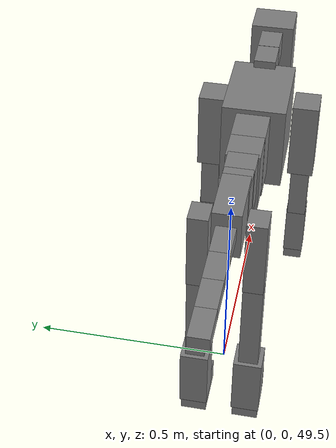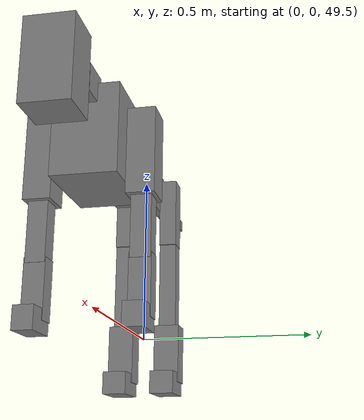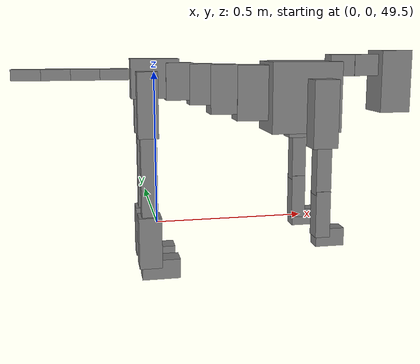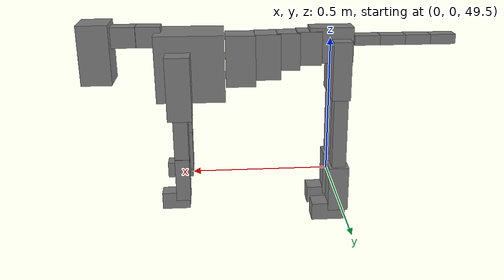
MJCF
<mujoco model="dog">

    <default>
        <joint armature="0.02" stiffness="1" damping="0.2" limited="true"/>
        <geom condim="3" friction="1 0.05 0.05" margin="0.01"/>
        <motor ctrllimited="true" ctrlrange="-1.0 1.0" forcelimited="true" gear="50"/>
    </default>

    <compiler inertiafromgeom="true" angle="radian"/>

    <option timestep="0.016" iterations="50" tolerance="1e-10" solver="Newton" jacobian="dense" cone="pyramidal"/>

    <size nconmax="20000" njmax="60000" nstack="5000000"/>
    <visual>
        <map force="0.1" zfar="30"/>
        <rgba haze="0.15 0.25 0.35 1"/>
        <quality shadowsize="2048"/>
        <global offwidth="800" offheight="800"/>
    </visual>

    <asset>
        <texture type="skybox" builtin="gradient" rgb1="0.3 0.5 0.7" rgb2="0 0 0" width="512" height="512"/>
        <texture name="texplane" type="2d" builtin="checker" rgb1=".2 .3 .4" rgb2=".1 0.15 0.2" width="512" height="512"
                 mark="cross" markrgb=".8 .8 .8"/>
        <texture name="texgeom" type="cube" builtin="flat" mark="cross" width="127" height="1278" rgb1="0.8 0.6 0.4"
                 rgb2="0.8 0.6 0.4" markrgb="1 1 1" random="0.01"/>

        <material name="matplane" reflectance="0.3" texture="texplane" texrepeat="1 1" texuniform="true"/>
        <material name="matgeom" texture="texgeom" texuniform="true" rgba="0.8 0.6 .4 1"/>
    </asset>

    <worldbody>
        <geom name="floor" pos="0 0 0" size="0 0 .25" type="plane" material="matplane" condim="3"/>

        <light directional="false" diffuse=".2 .2 .2" specular="0 0 0" pos="0 0 5" dir="0 0 -1" castshadow="false"/>
        <light mode="targetbodycom" target="torso" directional="false" diffuse=".8 .8 .8" specular="0.3 0.3 0.3"
               pos="0 0 4.0" dir="0 0 -1"/>

        <body name="root" pos="0 0 50">
            <freejoint name="root_1"/>
            <geom type="box" pos="0 0 -0.02" size="0.0774  0.0358  0.063" density="2030"/>

            <body name="spine1" pos="0.054 0 0">
                <joint name="spine1_y" axis="0 1 0" range="0 0.7" limited="true"/>
                <geom type="box" pos="0.02375 0 -0.03" size="0.04375  0.0375  0.05985" density="2030"/>

                <body name="spine2" pos="0.0612 0 0">
                    <joint name="spine2_y" axis="0 1 0" range="-0.15 0.15" limited="true"/>
                    <geom type="box" pos="0.03555  0  -0.04" size="0.04055  0.039  0.06615" density="2030"/>

                    <body name="spine3" pos="0.0730 0 0">
                        <joint name="spine3_y" axis="0 1 0" range="-0.15 0.15" limited="true"/>
                        <geom type="box" pos="0.03555  0  -0.057" size="0.04555  0.0445  0.081" density="2030"/>

                        <body name="spine4" pos="0.0780 0 0">
                            <joint name="spine4_y" axis="0 1 0" range="-0.15 0.15" limited="true"/>
                            <geom type="box" pos="0.05265  0  -0.07" size="0.05265  0.045  0.09135" density="2030"/>

                            <body name="torso" pos="0.1082 0 0">
                                <joint name="torso_y" axis="0 1 0" range="-0.15 0.15" limited="true"/>
                                <geom type="box" pos="0.11925  0  -0.085" size="0.11925  0.085  0.11745"
                                      density="2030"/>

                                <body name="neck1" pos="0.2160  0   0.0180">
                                    <joint name="neck1_y" axis="0 1 0" range="-1.2  -1" limited="true"/>
                                    <geom type="box" pos="0.0423  0  0" size="0.0423  0.03  0.036" density="2325"/>

                                    <body name="neck2" pos="0.0853  0  0">
                                        <joint name="neck2_y" axis="0 1 0" range="0.1  0" limited="true"/>
                                        <geom type="box" pos="0.0423  0  0" size="0.0423  0.03  0.036" density="2325"/>

                                        <body name="head" pos="0.0853  0  0">
                                            <joint name="head_y" axis="0 1 0" range="-0.3  -0.2" limited="true"/>
                                            <geom type="box" pos="0.0531  0  -0.055" size="0.0531  0.06  0.1044"
                                                  density="4030"/>

                                        </body>
                                    </body>
                                </body>

                                <body name="front_shoulder" pos="0.156  0   -0.0480">
                                    <joint name="front_shoulder_y" axis="0 1 0" range="-1 1.5" limited="true"/>
                                    <geom type="box" pos="0 0.13 -0.0839" size="0.0416  0.0356  0.1105" density="1158"/>
                                    <geom type="box" pos="0 -0.13 -0.0839" size="0.0416  0.0356  0.1105"
                                          density="1158"/>

                                    <body name="front_elbow" pos="0  0  -0.1677">
                                        <joint name="front_elbow_y" axis="0 1 0" range="-2 0" limited="true"/>
                                        <geom type="box" pos="0 0.13 -0.0912" size="0.0250  0.0255  0.0912"
                                              density="1081"/>
                                        <geom type="box" pos="0 -0.13 -0.0912" size="0.0250  0.0255  0.0912"
                                              density="1081"/>

                                        <body name="front_wrist" pos="0  0  -0.1824">
                                            <joint name="front_wrist_y" axis="0 1 0" range="-0.2 0" limited="true"/>
                                            <geom type="box" pos="0 0.13 -0.0638" size="0.0247  0.0275  0.0769"
                                                  density="1664"/>
                                            <geom type="box" pos="0 -0.13 -0.0638" size="0.0247  0.0275  0.0769"
                                                  density="1664"/>

                                            <body name="front_finger_end" pos="0  0  -0.1275">
                                                <joint name="front_finger_y" axis="0 1 0" range="-0.4 1"
                                                       limited="true"/>
                                                <geom type="box" pos="0.0261  0.13  -0.0147"
                                                      size="0.0479  0.0261  0.0297" density="1515"/>
                                                <geom type="box" pos="0.0261  -0.13  -0.0147"
                                                      size="0.0479  0.0261  0.0297" density="1515"/>

                                            </body>

                                        </body>
                                    </body>
                                </body>

                            </body>
                        </body>
                    </body>
                </body>
            </body>

            <body name="back_hip" pos="-0.03 0 -0.018">
                <joint name="back_hip_y" axis="0 1 0" range="-1.5 0.3" limited="true"/>
                <geom type="box" pos="0 0.07 -0.0818" size="0.0328  0.0257  0.1046" density="1154"/>
                <geom type="box" pos="0 -0.07 -0.0818" size="0.0328  0.0257  0.1046" density="1154"/>

                <body name="back_knee" pos="0  0  -0.1636">
                    <joint name="back_knee_y" axis="0 1 0" range="0 2.8" limited="true"/>
                    <geom type="box" pos="0 0.07 -0.1441" size="0.0258  0.0254  0.1597" density="1227"/>
                    <geom type="box" pos="0 -0.07 -0.1441" size="0.0258  0.0254  0.1597" density="1227"/>

                    <body name="back_ankle" pos="0  0  -0.2883">
                        <joint name="back_ankle_y" axis="0 1 0" range="-2.2 0" limited="true"/>
                        <geom type="box" pos="0 0.07 -0.0728" size="0.0368  0.0368  0.0840" density="1284"/>
                        <geom type="box" pos="0 -0.07 -0.0728" size="0.0368  0.0368  0.0840" density="1284"/>

                        <body name="back_toe_end" pos="0  0  -0.1456">
                            <joint name="back_toe_y" axis="0 1 0" range="-0.4 1" limited="true"/>
                            <geom type="box" pos="0.0339  0.07  -0.0172" size="0.0621  0.0339  0.0322" density="1515"/>
                            <geom type="box" pos="0.0339  -0.07  -0.0172" size="0.0621  0.0339  0.0322" density="1515"/>

                        </body>
                    </body>
                </body>
            </body>

            <body name="tail1" pos="-0.074 0 -0.006">
                <joint name="tail1_y" axis="0 1 0" range="-0.2 0.2" limited="true"/>
                <geom type="box" pos="-0.0536  0  0" size="0.045  0.025  0.0175" density="1587"/>

                <body name="tail2" pos="-0.09 0 0">
                    <joint name="tail2_y" axis="0 1 0" range="-0.2 0.2" limited="true"/>
                    <geom type="box" pos="-0.0536  0  0" size="0.045  0.025  0.0175" density="1587"/>

                    <body name="tail3" pos="-0.09 0 0">
                        <joint name="tail3_y" axis="0 1 0" range="-0.2 0.2" limited="true"/>
                        <geom type="box" pos="-0.0536  0  0" size="0.045  0.025  0.0175" density="1587"/>

                        <body name="tail4" pos="-0.09 0 0">
                            <joint name="tail4_y" axis="0 1 0" range="-0.2 0.2" limited="true"/>
                            <geom type="box" pos="-0.0536  0  0" size="0.045  0.025  0.0175" density="1587"/>

                        </body>
                    </body>
                </body>
            </body>
        </body>
    </worldbody>

    <actuator>
        <motor joint="spine1_y" forcerange="-150 150     "/>
        <motor joint="spine2_y" forcerange="-150 150     "/>
        <motor joint="spine3_y" forcerange="-150 150     "/>
        <motor joint="spine4_y" forcerange="-150 150     "/>
        <motor joint="torso_y" forcerange="-150 150     "/>
        <motor joint="neck1_y" forcerange="-100 100       "/>
        <motor joint="neck2_y" forcerange="-100 100       "/>
        <motor joint="head_y" forcerange="-150 150       "/>
        <motor joint="front_shoulder_y" forcerange="-182.71 154.56"/>
        <motor joint="front_elbow_y" forcerange="-183.37 102.36"/>
        <motor joint="front_wrist_y" forcerange="-107.03 112.76"/>
        <motor joint="front_finger_y" forcerange="-56.50 42.86"/>
        <motor joint="back_hip_y" forcerange="-266.50 276.29"/>
        <motor joint="back_knee_y" forcerange="-323.18 246.97"/>
        <motor joint="back_angle_y" forcerange="-245.97 242.61"/>
        <motor joint="back_toe_y" forcerange="-70.11 120.86"/>
        <motor joint="tail1_y" forcerange="-50 50     "/>
        <motor joint="tail2_y" forcerange="-50 50     "/>
        <motor joint="tail3_y" forcerange="-50 50     "/>
        <motor joint="tail4_y" forcerange="-50 50     "/>
    </actuator>
</mujoco>
